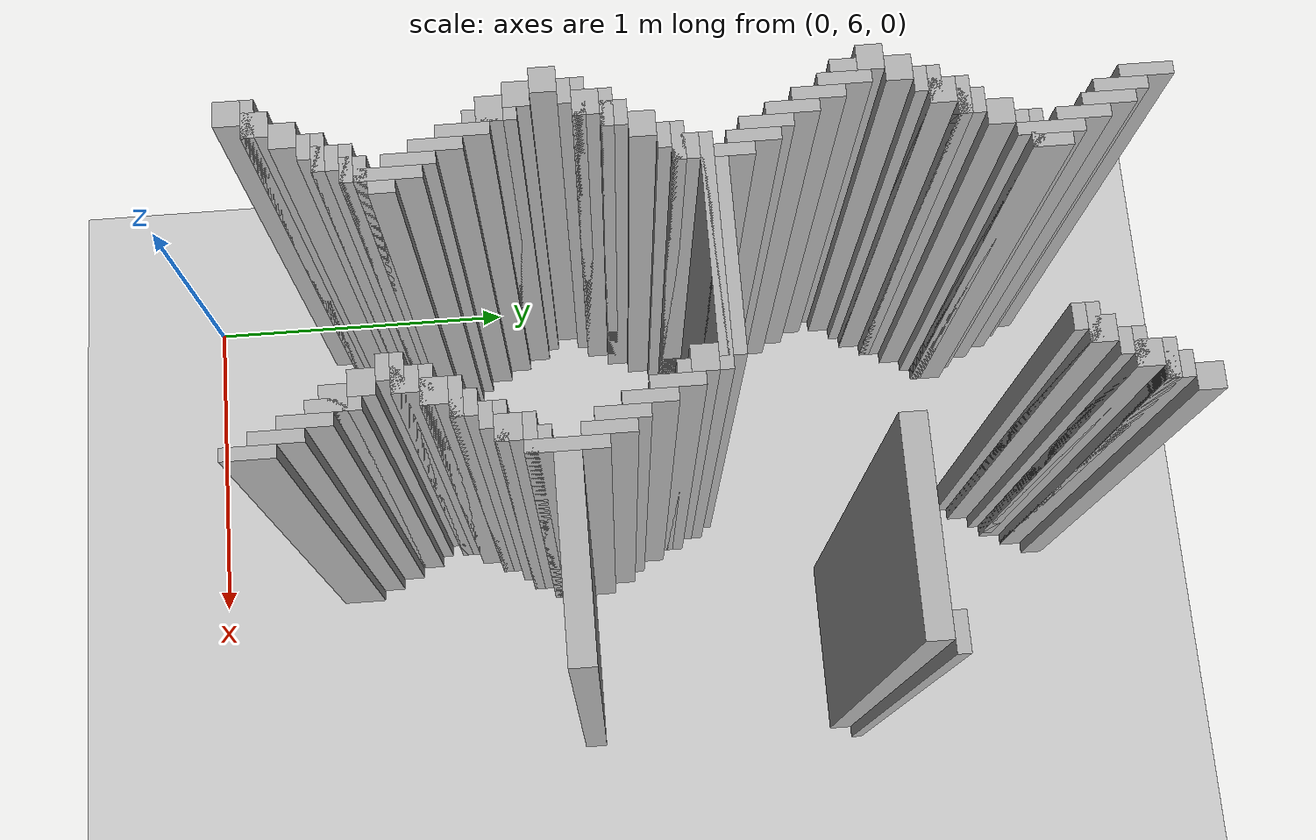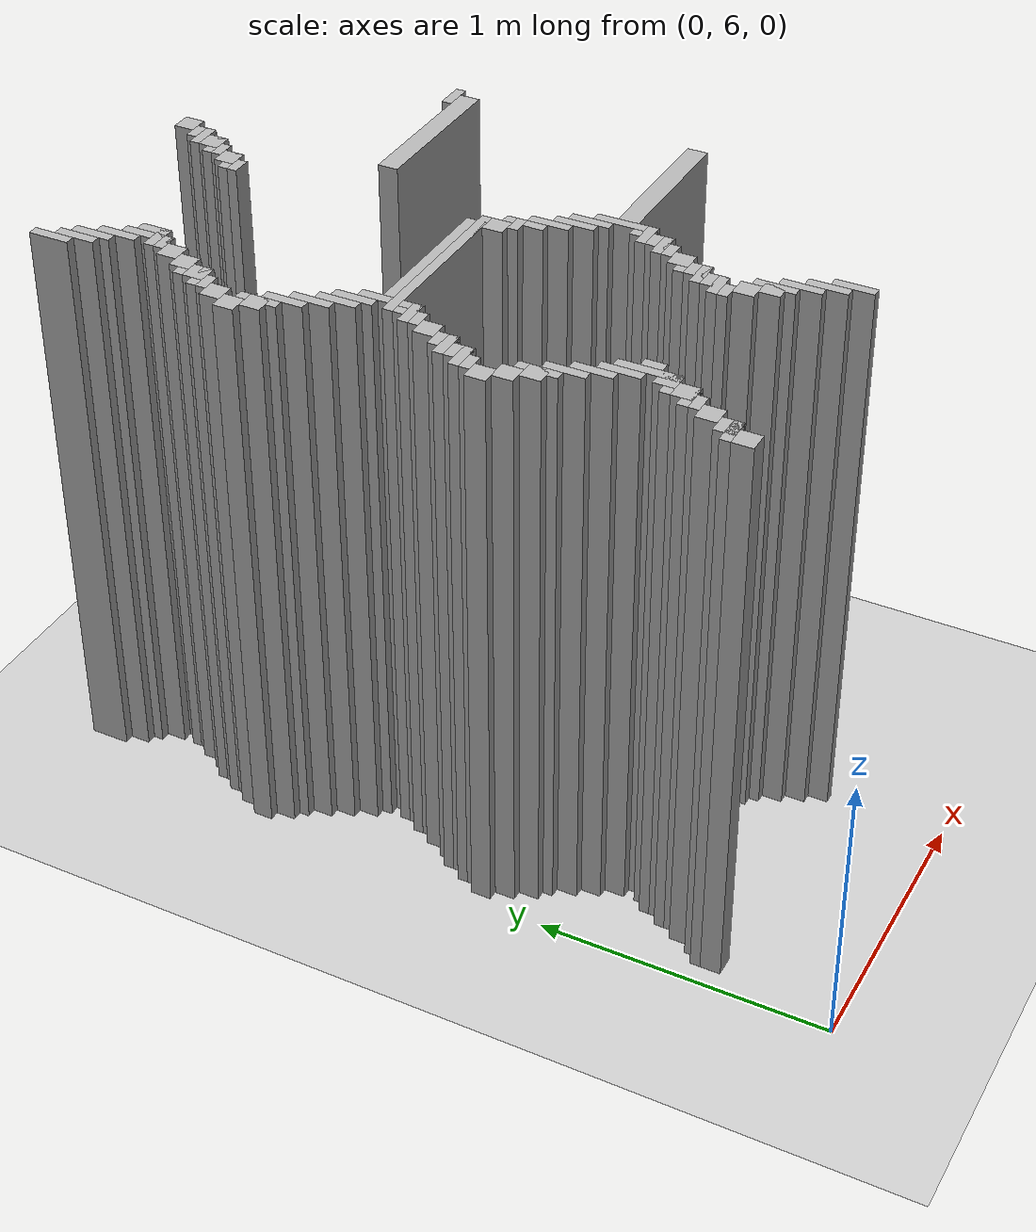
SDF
<sdf version="1.6">
 <world name="slam_world">
  <model name="ground_plane">
   <static>true</static>
   <link name="link">
    <collision name="collision">
     <geometry><plane><normal>0 0 1</normal><size>100 100</size></plane></geometry>
    </collision>
    <visual name="visual">
     <geometry><plane><normal>0 0 1</normal><size>100 100</size></plane></geometry>
     <material>
      <ambient>0.8 0.8 0.8 1</ambient>
      <diffuse>0.8 0.8 0.8 1</diffuse>
      <specular>0.8 0.8 0.8 1</specular>
     </material>
    </visual>
   </link>
  </model>
  <model name="wall_2858">
   <static>true</static>
   <pose>0.15661252900232017 8.77030162412993 1.0 0 0 0</pose>
   <link name="link">
    <collision name="collision">
     <geometry><box><size>0.03480278422273782 0.13921113689095127 2.0</size></box></geometry>
    </collision>
    <visual name="visual">
     <geometry><box><size>0.03480278422273782 0.13921113689095127 2.0</size></box></geometry>
     <material><ambient>0.5 0.5 0.5 1</ambient><diffuse>0.7 0.7 0.7 1</diffuse></material>
    </visual>
   </link>
  </model>
  <model name="wall_2859">
   <static>true</static>
   <pose>0.974477958236659 8.805104408352667 1.0 0 0 0</pose>
   <link name="link">
    <collision name="collision">
     <geometry><box><size>0.06960556844547564 0.06960556844547564 2.0</size></box></geometry>
    </collision>
    <visual name="visual">
     <geometry><box><size>0.06960556844547564 0.06960556844547564 2.0</size></box></geometry>
     <material><ambient>0.5 0.5 0.5 1</ambient><diffuse>0.7 0.7 0.7 1</diffuse></material>
    </visual>
   </link>
  </model>
  <model name="wall_2873">
   <static>true</static>
   <pose>0.191415313225058 8.700696055684455 1.0 0 0 0</pose>
   <link name="link">
    <collision name="collision">
     <geometry><box><size>0.03480278422273782 0.13921113689095127 2.0</size></box></geometry>
    </collision>
    <visual name="visual">
     <geometry><box><size>0.03480278422273782 0.13921113689095127 2.0</size></box></geometry>
     <material><ambient>0.5 0.5 0.5 1</ambient><diffuse>0.7 0.7 0.7 1</diffuse></material>
    </visual>
   </link>
  </model>
  <model name="wall_2874">
   <static>true</static>
   <pose>0.9396751740139211 8.735498839907192 1.0 0 0 0</pose>
   <link name="link">
    <collision name="collision">
     <geometry><box><size>0.06960556844547564 0.06960556844547564 2.0</size></box></geometry>
    </collision>
    <visual name="visual">
     <geometry><box><size>0.06960556844547564 0.06960556844547564 2.0</size></box></geometry>
     <material><ambient>0.5 0.5 0.5 1</ambient><diffuse>0.7 0.7 0.7 1</diffuse></material>
    </visual>
   </link>
  </model>
  <model name="wall_2888">
   <static>true</static>
   <pose>0.2262180974477958 8.665893271461716 1.0 0 0 0</pose>
   <link name="link">
    <collision name="collision">
     <geometry><box><size>0.03480278422273782 0.13921113689095127 2.0</size></box></geometry>
    </collision>
    <visual name="visual">
     <geometry><box><size>0.03480278422273782 0.13921113689095127 2.0</size></box></geometry>
     <material><ambient>0.5 0.5 0.5 1</ambient><diffuse>0.7 0.7 0.7 1</diffuse></material>
    </visual>
   </link>
  </model>
  <model name="wall_2889">
   <static>true</static>
   <pose>0.9222737819025522 8.718097447795824 1.0 0 0 0</pose>
   <link name="link">
    <collision name="collision">
     <geometry><box><size>0.10440835266821345 0.03480278422273782 2.0</size></box></geometry>
    </collision>
    <visual name="visual">
     <geometry><box><size>0.10440835266821345 0.03480278422273782 2.0</size></box></geometry>
     <material><ambient>0.5 0.5 0.5 1</ambient><diffuse>0.7 0.7 0.7 1</diffuse></material>
    </visual>
   </link>
  </model>
  <model name="wall_2903">
   <static>true</static>
   <pose>0.9048723897911832 8.665893271461716 1.0 0 0 0</pose>
   <link name="link">
    <collision name="collision">
     <geometry><box><size>0.06960556844547564 0.06960556844547564 2.0</size></box></geometry>
    </collision>
    <visual name="visual">
     <geometry><box><size>0.06960556844547564 0.06960556844547564 2.0</size></box></geometry>
     <material><ambient>0.5 0.5 0.5 1</ambient><diffuse>0.7 0.7 0.7 1</diffuse></material>
    </visual>
   </link>
  </model>
  <model name="wall_2914">
   <static>true</static>
   <pose>0.2610208816705336 8.596287703016241 1.0 0 0 0</pose>
   <link name="link">
    <collision name="collision">
     <geometry><box><size>0.03480278422273782 0.13921113689095127 2.0</size></box></geometry>
    </collision>
    <visual name="visual">
     <geometry><box><size>0.03480278422273782 0.13921113689095127 2.0</size></box></geometry>
     <material><ambient>0.5 0.5 0.5 1</ambient><diffuse>0.7 0.7 0.7 1</diffuse></material>
    </visual>
   </link>
  </model>
  <model name="wall_2915">
   <static>true</static>
   <pose>0.8874709976798143 8.648491879350347 1.0 0 0 0</pose>
   <link name="link">
    <collision name="collision">
     <geometry><box><size>0.10440835266821345 0.03480278422273782 2.0</size></box></geometry>
    </collision>
    <visual name="visual">
     <geometry><box><size>0.10440835266821345 0.03480278422273782 2.0</size></box></geometry>
     <material><ambient>0.5 0.5 0.5 1</ambient><diffuse>0.7 0.7 0.7 1</diffuse></material>
    </visual>
   </link>
  </model>
  <model name="wall_2929">
   <static>true</static>
   <pose>0.8700696055684455 8.61368909512761 1.0 0 0 0</pose>
   <link name="link">
    <collision name="collision">
     <geometry><box><size>0.06960556844547564 0.03480278422273782 2.0</size></box></geometry>
    </collision>
    <visual name="visual">
     <geometry><box><size>0.06960556844547564 0.03480278422273782 2.0</size></box></geometry>
     <material><ambient>0.5 0.5 0.5 1</ambient><diffuse>0.7 0.7 0.7 1</diffuse></material>
    </visual>
   </link>
  </model>
  <model name="wall_2935">
   <static>true</static>
   <pose>0.29582366589327147 8.509280742459396 1.0 0 0 0</pose>
   <link name="link">
    <collision name="collision">
     <geometry><box><size>0.03480278422273782 0.17401392111368907 2.0</size></box></geometry>
    </collision>
    <visual name="visual">
     <geometry><box><size>0.03480278422273782 0.17401392111368907 2.0</size></box></geometry>
     <material><ambient>0.5 0.5 0.5 1</ambient><diffuse>0.7 0.7 0.7 1</diffuse></material>
    </visual>
   </link>
  </model>
  <model name="wall_2936">
   <static>true</static>
   <pose>0.8352668213457076 8.561484918793504 1.0 0 0 0</pose>
   <link name="link">
    <collision name="collision">
     <geometry><box><size>0.06960556844547564 0.06960556844547564 2.0</size></box></geometry>
    </collision>
    <visual name="visual">
     <geometry><box><size>0.06960556844547564 0.06960556844547564 2.0</size></box></geometry>
     <material><ambient>0.5 0.5 0.5 1</ambient><diffuse>0.7 0.7 0.7 1</diffuse></material>
    </visual>
   </link>
  </model>
  <model name="wall_2950">
   <static>true</static>
   <pose>0.3306264501160093 8.509280742459396 1.0 0 0 0</pose>
   <link name="link">
    <collision name="collision">
     <geometry><box><size>0.03480278422273782 0.10440835266821345 2.0</size></box></geometry>
    </collision>
    <visual name="visual">
     <geometry><box><size>0.03480278422273782 0.10440835266821345 2.0</size></box></geometry>
     <material><ambient>0.5 0.5 0.5 1</ambient><diffuse>0.7 0.7 0.7 1</diffuse></material>
    </visual>
   </link>
  </model>
  <model name="wall_2951">
   <static>true</static>
   <pose>0.8178654292343387 8.544083526682135 1.0 0 0 0</pose>
   <link name="link">
    <collision name="collision">
     <geometry><box><size>0.10440835266821345 0.03480278422273782 2.0</size></box></geometry>
    </collision>
    <visual name="visual">
     <geometry><box><size>0.10440835266821345 0.03480278422273782 2.0</size></box></geometry>
     <material><ambient>0.5 0.5 0.5 1</ambient><diffuse>0.7 0.7 0.7 1</diffuse></material>
    </visual>
   </link>
  </model>
  <model name="wall_2965">
   <static>true</static>
   <pose>0.8004640371229698 8.509280742459396 1.0 0 0 0</pose>
   <link name="link">
    <collision name="collision">
     <geometry><box><size>0.06960556844547564 0.03480278422273782 2.0</size></box></geometry>
    </collision>
    <visual name="visual">
     <geometry><box><size>0.06960556844547564 0.03480278422273782 2.0</size></box></geometry>
     <material><ambient>0.5 0.5 0.5 1</ambient><diffuse>0.7 0.7 0.7 1</diffuse></material>
    </visual>
   </link>
  </model>
  <model name="wall_2975">
   <static>true</static>
   <pose>0.29582366589327147 8.474477958236658 1.0 0 0 0</pose>
   <link name="link">
    <collision name="collision">
     <geometry><box><size>0.10440835266821345 0.03480278422273782 2.0</size></box></geometry>
    </collision>
    <visual name="visual">
     <geometry><box><size>0.10440835266821345 0.03480278422273782 2.0</size></box></geometry>
     <material><ambient>0.5 0.5 0.5 1</ambient><diffuse>0.7 0.7 0.7 1</diffuse></material>
    </visual>
   </link>
  </model>
  <model name="wall_2986">
   <static>true</static>
   <pose>0.27842227378190254 8.43967517401392 1.0 0 0 0</pose>
   <link name="link">
    <collision name="collision">
     <geometry><box><size>0.06960556844547564 0.03480278422273782 2.0</size></box></geometry>
    </collision>
    <visual name="visual">
     <geometry><box><size>0.06960556844547564 0.03480278422273782 2.0</size></box></geometry>
     <material><ambient>0.5 0.5 0.5 1</ambient><diffuse>0.7 0.7 0.7 1</diffuse></material>
    </visual>
   </link>
  </model>
  <model name="wall_2999">
   <static>true</static>
   <pose>0.24361948955916474 8.387470997679815 1.0 0 0 0</pose>
   <link name="link">
    <collision name="collision">
     <geometry><box><size>0.06960556844547564 0.06960556844547564 2.0</size></box></geometry>
    </collision>
    <visual name="visual">
     <geometry><box><size>0.06960556844547564 0.06960556844547564 2.0</size></box></geometry>
     <material><ambient>0.5 0.5 0.5 1</ambient><diffuse>0.7 0.7 0.7 1</diffuse></material>
    </visual>
   </link>
  </model>
  <model name="wall_3012">
   <static>true</static>
   <pose>0.2088167053364269 8.317865429234338 1.0 0 0 0</pose>
   <link name="link">
    <collision name="collision">
     <geometry><box><size>0.06960556844547564 0.06960556844547564 2.0</size></box></geometry>
    </collision>
    <visual name="visual">
     <geometry><box><size>0.06960556844547564 0.06960556844547564 2.0</size></box></geometry>
     <material><ambient>0.5 0.5 0.5 1</ambient><diffuse>0.7 0.7 0.7 1</diffuse></material>
    </visual>
   </link>
  </model>
  <model name="wall_3025">
   <static>true</static>
   <pose>0.191415313225058 8.30046403712297 1.0 0 0 0</pose>
   <link name="link">
    <collision name="collision">
     <geometry><box><size>0.10440835266821345 0.03480278422273782 2.0</size></box></geometry>
    </collision>
    <visual name="visual">
     <geometry><box><size>0.10440835266821345 0.03480278422273782 2.0</size></box></geometry>
     <material><ambient>0.5 0.5 0.5 1</ambient><diffuse>0.7 0.7 0.7 1</diffuse></material>
    </visual>
   </link>
  </model>
  <model name="wall_3038">
   <static>true</static>
   <pose>0.17401392111368907 8.248259860788863 1.0 0 0 0</pose>
   <link name="link">
    <collision name="collision">
     <geometry><box><size>0.06960556844547564 0.06960556844547564 2.0</size></box></geometry>
    </collision>
    <visual name="visual">
     <geometry><box><size>0.06960556844547564 0.06960556844547564 2.0</size></box></geometry>
     <material><ambient>0.5 0.5 0.5 1</ambient><diffuse>0.7 0.7 0.7 1</diffuse></material>
    </visual>
   </link>
  </model>
  <model name="wall_3049">
   <static>true</static>
   <pose>0.15661252900232017 8.230858468677495 1.0 0 0 0</pose>
   <link name="link">
    <collision name="collision">
     <geometry><box><size>0.10440835266821345 0.03480278422273782 2.0</size></box></geometry>
    </collision>
    <visual name="visual">
     <geometry><box><size>0.10440835266821345 0.03480278422273782 2.0</size></box></geometry>
     <material><ambient>0.5 0.5 0.5 1</ambient><diffuse>0.7 0.7 0.7 1</diffuse></material>
    </visual>
   </link>
  </model>
  <model name="wall_3062">
   <static>true</static>
   <pose>0.13921113689095127 8.196055684454755 1.0 0 0 0</pose>
   <link name="link">
    <collision name="collision">
     <geometry><box><size>0.06960556844547564 0.03480278422273782 2.0</size></box></geometry>
    </collision>
    <visual name="visual">
     <geometry><box><size>0.06960556844547564 0.03480278422273782 2.0</size></box></geometry>
     <material><ambient>0.5 0.5 0.5 1</ambient><diffuse>0.7 0.7 0.7 1</diffuse></material>
    </visual>
   </link>
  </model>
  <model name="wall_3071">
   <static>true</static>
   <pose>0.10440835266821345 8.14385150812065 1.0 0 0 0</pose>
   <link name="link">
    <collision name="collision">
     <geometry><box><size>0.06960556844547564 0.06960556844547564 2.0</size></box></geometry>
    </collision>
    <visual name="visual">
     <geometry><box><size>0.06960556844547564 0.06960556844547564 2.0</size></box></geometry>
     <material><ambient>0.5 0.5 0.5 1</ambient><diffuse>0.7 0.7 0.7 1</diffuse></material>
    </visual>
   </link>
  </model>
  <model name="wall_3084">
   <static>true</static>
   <pose>1.548723897911833 8.12645011600928 1.0 0 0 0</pose>
   <link name="link">
    <collision name="collision">
     <geometry><box><size>0.10440835266821345 0.03480278422273782 2.0</size></box></geometry>
    </collision>
    <visual name="visual">
     <geometry><box><size>0.10440835266821345 0.03480278422273782 2.0</size></box></geometry>
     <material><ambient>0.5 0.5 0.5 1</ambient><diffuse>0.7 0.7 0.7 1</diffuse></material>
    </visual>
   </link>
  </model>
  <model name="wall_3096">
   <static>true</static>
   <pose>0.06960556844547564 8.074245939675174 1.0 0 0 0</pose>
   <link name="link">
    <collision name="collision">
     <geometry><box><size>0.06960556844547564 0.06960556844547564 2.0</size></box></geometry>
    </collision>
    <visual name="visual">
     <geometry><box><size>0.06960556844547564 0.06960556844547564 2.0</size></box></geometry>
     <material><ambient>0.5 0.5 0.5 1</ambient><diffuse>0.7 0.7 0.7 1</diffuse></material>
    </visual>
   </link>
  </model>
  <model name="wall_3097">
   <static>true</static>
   <pose>1.2877030162412992 8.074245939675174 1.0 0 0 0</pose>
   <link name="link">
    <collision name="collision">
     <geometry><box><size>0.5568445475638051 0.06960556844547564 2.0</size></box></geometry>
    </collision>
    <visual name="visual">
     <geometry><box><size>0.5568445475638051 0.06960556844547564 2.0</size></box></geometry>
     <material><ambient>0.5 0.5 0.5 1</ambient><diffuse>0.7 0.7 0.7 1</diffuse></material>
    </visual>
   </link>
  </model>
  <model name="wall_3107">
   <static>true</static>
   <pose>0.12180974477958237 8.004640371229698 1.0 0 0 0</pose>
   <link name="link">
    <collision name="collision">
     <geometry><box><size>0.03480278422273782 0.13921113689095127 2.0</size></box></geometry>
    </collision>
    <visual name="visual">
     <geometry><box><size>0.03480278422273782 0.13921113689095127 2.0</size></box></geometry>
     <material><ambient>0.5 0.5 0.5 1</ambient><diffuse>0.7 0.7 0.7 1</diffuse></material>
    </visual>
   </link>
  </model>
  <model name="wall_3114">
   <static>true</static>
   <pose>0.10440835266821345 8.004640371229698 1.0 0 0 0</pose>
   <link name="link">
    <collision name="collision">
     <geometry><box><size>0.06960556844547564 0.06960556844547564 2.0</size></box></geometry>
    </collision>
    <visual name="visual">
     <geometry><box><size>0.06960556844547564 0.06960556844547564 2.0</size></box></geometry>
     <material><ambient>0.5 0.5 0.5 1</ambient><diffuse>0.7 0.7 0.7 1</diffuse></material>
    </visual>
   </link>
  </model>
  <model name="wall_3123">
   <static>true</static>
   <pose>0.15661252900232017 7.935034802784222 1.0 0 0 0</pose>
   <link name="link">
    <collision name="collision">
     <geometry><box><size>0.03480278422273782 0.13921113689095127 2.0</size></box></geometry>
    </collision>
    <visual name="visual">
     <geometry><box><size>0.03480278422273782 0.13921113689095127 2.0</size></box></geometry>
     <material><ambient>0.5 0.5 0.5 1</ambient><diffuse>0.7 0.7 0.7 1</diffuse></material>
    </visual>
   </link>
  </model>
  <model name="wall_3137">
   <static>true</static>
   <pose>0.191415313225058 7.865429234338746 1.0 0 0 0</pose>
   <link name="link">
    <collision name="collision">
     <geometry><box><size>0.03480278422273782 0.13921113689095127 2.0</size></box></geometry>
    </collision>
    <visual name="visual">
     <geometry><box><size>0.03480278422273782 0.13921113689095127 2.0</size></box></geometry>
     <material><ambient>0.5 0.5 0.5 1</ambient><diffuse>0.7 0.7 0.7 1</diffuse></material>
    </visual>
   </link>
  </model>
  <model name="wall_3146">
   <static>true</static>
   <pose>0.2262180974477958 7.795823665893272 1.0 0 0 0</pose>
   <link name="link">
    <collision name="collision">
     <geometry><box><size>0.03480278422273782 0.13921113689095127 2.0</size></box></geometry>
    </collision>
    <visual name="visual">
     <geometry><box><size>0.03480278422273782 0.13921113689095127 2.0</size></box></geometry>
     <material><ambient>0.5 0.5 0.5 1</ambient><diffuse>0.7 0.7 0.7 1</diffuse></material>
    </visual>
   </link>
  </model>
  <model name="wall_3155">
   <static>true</static>
   <pose>0.2610208816705336 7.761020881670533 1.0 0 0 0</pose>
   <link name="link">
    <collision name="collision">
     <geometry><box><size>0.03480278422273782 0.13921113689095127 2.0</size></box></geometry>
    </collision>
    <visual name="visual">
     <geometry><box><size>0.03480278422273782 0.13921113689095127 2.0</size></box></geometry>
     <material><ambient>0.5 0.5 0.5 1</ambient><diffuse>0.7 0.7 0.7 1</diffuse></material>
    </visual>
   </link>
  </model>
  <model name="wall_3167">
   <static>true</static>
   <pose>0.29582366589327147 7.65661252900232 1.0 0 0 0</pose>
   <link name="link">
    <collision name="collision">
     <geometry><box><size>0.03480278422273782 0.2088167053364269 2.0</size></box></geometry>
    </collision>
    <visual name="visual">
     <geometry><box><size>0.03480278422273782 0.2088167053364269 2.0</size></box></geometry>
     <material><ambient>0.5 0.5 0.5 1</ambient><diffuse>0.7 0.7 0.7 1</diffuse></material>
    </visual>
   </link>
  </model>
  <model name="wall_3179">
   <static>true</static>
   <pose>0.574245939675174 7.65661252900232 1.0 0 0 0</pose>
   <link name="link">
    <collision name="collision">
     <geometry><box><size>0.5220417633410672 0.06960556844547564 2.0</size></box></geometry>
    </collision>
    <visual name="visual">
     <geometry><box><size>0.5220417633410672 0.06960556844547564 2.0</size></box></geometry>
     <material><ambient>0.5 0.5 0.5 1</ambient><diffuse>0.7 0.7 0.7 1</diffuse></material>
    </visual>
   </link>
  </model>
  <model name="wall_3193">
   <static>true</static>
   <pose>0.5568445475638051 7.6392111368909505 1.0 0 0 0</pose>
   <link name="link">
    <collision name="collision">
     <geometry><box><size>0.6264501160092807 0.03480278422273782 2.0</size></box></geometry>
    </collision>
    <visual name="visual">
     <geometry><box><size>0.6264501160092807 0.03480278422273782 2.0</size></box></geometry>
     <material><ambient>0.5 0.5 0.5 1</ambient><diffuse>0.7 0.7 0.7 1</diffuse></material>
    </visual>
   </link>
  </model>
  <model name="wall_3204">
   <static>true</static>
   <pose>0.27842227378190254 7.587006960556844 1.0 0 0 0</pose>
   <link name="link">
    <collision name="collision">
     <geometry><box><size>0.06960556844547564 0.06960556844547564 2.0</size></box></geometry>
    </collision>
    <visual name="visual">
     <geometry><box><size>0.06960556844547564 0.06960556844547564 2.0</size></box></geometry>
     <material><ambient>0.5 0.5 0.5 1</ambient><diffuse>0.7 0.7 0.7 1</diffuse></material>
    </visual>
   </link>
  </model>
  <model name="wall_3205">
   <static>true</static>
   <pose>0.8352668213457076 7.587006960556844 1.0 0 0 0</pose>
   <link name="link">
    <collision name="collision">
     <geometry><box><size>0.06960556844547564 0.06960556844547564 2.0</size></box></geometry>
    </collision>
    <visual name="visual">
     <geometry><box><size>0.06960556844547564 0.06960556844547564 2.0</size></box></geometry>
     <material><ambient>0.5 0.5 0.5 1</ambient><diffuse>0.7 0.7 0.7 1</diffuse></material>
    </visual>
   </link>
  </model>
  <model name="wall_3217">
   <static>true</static>
   <pose>0.2610208816705336 7.569605568445476 1.0 0 0 0</pose>
   <link name="link">
    <collision name="collision">
     <geometry><box><size>0.10440835266821345 0.03480278422273782 2.0</size></box></geometry>
    </collision>
    <visual name="visual">
     <geometry><box><size>0.10440835266821345 0.03480278422273782 2.0</size></box></geometry>
     <material><ambient>0.5 0.5 0.5 1</ambient><diffuse>0.7 0.7 0.7 1</diffuse></material>
    </visual>
   </link>
  </model>
  <model name="wall_3218">
   <static>true</static>
   <pose>0.8874709976798143 7.517401392111369 1.0 0 0 0</pose>
   <link name="link">
    <collision name="collision">
     <geometry><box><size>0.03480278422273782 0.13921113689095127 2.0</size></box></geometry>
    </collision>
    <visual name="visual">
     <geometry><box><size>0.03480278422273782 0.13921113689095127 2.0</size></box></geometry>
     <material><ambient>0.5 0.5 0.5 1</ambient><diffuse>0.7 0.7 0.7 1</diffuse></material>
    </visual>
   </link>
  </model>
  <model name="wall_3230">
   <static>true</static>
   <pose>0.24361948955916474 7.534802784222737 1.0 0 0 0</pose>
   <link name="link">
    <collision name="collision">
     <geometry><box><size>0.06960556844547564 0.03480278422273782 2.0</size></box></geometry>
    </collision>
    <visual name="visual">
     <geometry><box><size>0.06960556844547564 0.03480278422273782 2.0</size></box></geometry>
     <material><ambient>0.5 0.5 0.5 1</ambient><diffuse>0.7 0.7 0.7 1</diffuse></material>
    </visual>
   </link>
  </model>
  <model name="wall_3231">
   <static>true</static>
   <pose>0.8700696055684455 7.534802784222737 1.0 0 0 0</pose>
   <link name="link">
    <collision name="collision">
     <geometry><box><size>0.06960556844547564 0.03480278422273782 2.0</size></box></geometry>
    </collision>
    <visual name="visual">
     <geometry><box><size>0.06960556844547564 0.03480278422273782 2.0</size></box></geometry>
     <material><ambient>0.5 0.5 0.5 1</ambient><diffuse>0.7 0.7 0.7 1</diffuse></material>
    </visual>
   </link>
  </model>
  <model name="wall_3239">
   <static>true</static>
   <pose>0.2088167053364269 7.48259860788863 1.0 0 0 0</pose>
   <link name="link">
    <collision name="collision">
     <geometry><box><size>0.06960556844547564 0.06960556844547564 2.0</size></box></geometry>
    </collision>
    <visual name="visual">
     <geometry><box><size>0.06960556844547564 0.06960556844547564 2.0</size></box></geometry>
     <material><ambient>0.5 0.5 0.5 1</ambient><diffuse>0.7 0.7 0.7 1</diffuse></material>
    </visual>
   </link>
  </model>
  <model name="wall_3240">
   <static>true</static>
   <pose>0.9222737819025522 7.447795823665893 1.0 0 0 0</pose>
   <link name="link">
    <collision name="collision">
     <geometry><box><size>0.03480278422273782 0.13921113689095127 2.0</size></box></geometry>
    </collision>
    <visual name="visual">
     <geometry><box><size>0.03480278422273782 0.13921113689095127 2.0</size></box></geometry>
     <material><ambient>0.5 0.5 0.5 1</ambient><diffuse>0.7 0.7 0.7 1</diffuse></material>
    </visual>
   </link>
  </model>
  <model name="wall_3252">
   <static>true</static>
   <pose>0.17401392111368907 7.412993039443156 1.0 0 0 0</pose>
   <link name="link">
    <collision name="collision">
     <geometry><box><size>0.06960556844547564 0.06960556844547564 2.0</size></box></geometry>
    </collision>
    <visual name="visual">
     <geometry><box><size>0.06960556844547564 0.06960556844547564 2.0</size></box></geometry>
     <material><ambient>0.5 0.5 0.5 1</ambient><diffuse>0.7 0.7 0.7 1</diffuse></material>
    </visual>
   </link>
  </model>
  <model name="wall_3253">
   <static>true</static>
   <pose>0.95707656612529 7.378190255220417 1.0 0 0 0</pose>
   <link name="link">
    <collision name="collision">
     <geometry><box><size>0.03480278422273782 0.13921113689095127 2.0</size></box></geometry>
    </collision>
    <visual name="visual">
     <geometry><box><size>0.03480278422273782 0.13921113689095127 2.0</size></box></geometry>
     <material><ambient>0.5 0.5 0.5 1</ambient><diffuse>0.7 0.7 0.7 1</diffuse></material>
    </visual>
   </link>
  </model>
  <model name="wall_3265">
   <static>true</static>
   <pose>0.15661252900232017 7.395591647331786 1.0 0 0 0</pose>
   <link name="link">
    <collision name="collision">
     <geometry><box><size>0.10440835266821345 0.03480278422273782 2.0</size></box></geometry>
    </collision>
    <visual name="visual">
     <geometry><box><size>0.10440835266821345 0.03480278422273782 2.0</size></box></geometry>
     <material><ambient>0.5 0.5 0.5 1</ambient><diffuse>0.7 0.7 0.7 1</diffuse></material>
    </visual>
   </link>
  </model>
  <model name="wall_3266">
   <static>true</static>
   <pose>0.9918793503480278 7.34338747099768 1.0 0 0 0</pose>
   <link name="link">
    <collision name="collision">
     <geometry><box><size>0.03480278422273782 0.13921113689095127 2.0</size></box></geometry>
    </collision>
    <visual name="visual">
     <geometry><box><size>0.03480278422273782 0.13921113689095127 2.0</size></box></geometry>
     <material><ambient>0.5 0.5 0.5 1</ambient><diffuse>0.7 0.7 0.7 1</diffuse></material>
    </visual>
   </link>
  </model>
  <model name="wall_3278">
   <static>true</static>
   <pose>0.13921113689095127 7.34338747099768 1.0 0 0 0</pose>
   <link name="link">
    <collision name="collision">
     <geometry><box><size>0.06960556844547564 0.06960556844547564 2.0</size></box></geometry>
    </collision>
    <visual name="visual">
     <geometry><box><size>0.06960556844547564 0.06960556844547564 2.0</size></box></geometry>
     <material><ambient>0.5 0.5 0.5 1</ambient><diffuse>0.7 0.7 0.7 1</diffuse></material>
    </visual>
   </link>
  </model>
  <model name="wall_3285">
   <static>true</static>
   <pose>0.12180974477958237 7.32598607888631 1.0 0 0 0</pose>
   <link name="link">
    <collision name="collision">
     <geometry><box><size>0.10440835266821345 0.03480278422273782 2.0</size></box></geometry>
    </collision>
    <visual name="visual">
     <geometry><box><size>0.10440835266821345 0.03480278422273782 2.0</size></box></geometry>
     <material><ambient>0.5 0.5 0.5 1</ambient><diffuse>0.7 0.7 0.7 1</diffuse></material>
    </visual>
   </link>
  </model>
  <model name="wall_3286">
   <static>true</static>
   <pose>1.0266821345707655 7.238979118329466 1.0 0 0 0</pose>
   <link name="link">
    <collision name="collision">
     <geometry><box><size>0.03480278422273782 0.2088167053364269 2.0</size></box></geometry>
    </collision>
    <visual name="visual">
     <geometry><box><size>0.03480278422273782 0.2088167053364269 2.0</size></box></geometry>
     <material><ambient>0.5 0.5 0.5 1</ambient><diffuse>0.7 0.7 0.7 1</diffuse></material>
    </visual>
   </link>
  </model>
  <model name="wall_3298">
   <static>true</static>
   <pose>0.10440835266821345 7.291183294663573 1.0 0 0 0</pose>
   <link name="link">
    <collision name="collision">
     <geometry><box><size>0.06960556844547564 0.03480278422273782 2.0</size></box></geometry>
    </collision>
    <visual name="visual">
     <geometry><box><size>0.06960556844547564 0.03480278422273782 2.0</size></box></geometry>
     <material><ambient>0.5 0.5 0.5 1</ambient><diffuse>0.7 0.7 0.7 1</diffuse></material>
    </visual>
   </link>
  </model>
  <model name="wall_3305">
   <static>true</static>
   <pose>0.06960556844547564 7.238979118329466 1.0 0 0 0</pose>
   <link name="link">
    <collision name="collision">
     <geometry><box><size>0.06960556844547564 0.06960556844547564 2.0</size></box></geometry>
    </collision>
    <visual name="visual">
     <geometry><box><size>0.06960556844547564 0.06960556844547564 2.0</size></box></geometry>
     <material><ambient>0.5 0.5 0.5 1</ambient><diffuse>0.7 0.7 0.7 1</diffuse></material>
    </visual>
   </link>
  </model>
  <model name="wall_3306">
   <static>true</static>
   <pose>1.3051044083526682 7.238979118329466 1.0 0 0 0</pose>
   <link name="link">
    <collision name="collision">
     <geometry><box><size>0.5220417633410672 0.06960556844547564 2.0</size></box></geometry>
    </collision>
    <visual name="visual">
     <geometry><box><size>0.5220417633410672 0.06960556844547564 2.0</size></box></geometry>
     <material><ambient>0.5 0.5 0.5 1</ambient><diffuse>0.7 0.7 0.7 1</diffuse></material>
    </visual>
   </link>
  </model>
  <model name="wall_3318">
   <static>true</static>
   <pose>0.10440835266821345 7.16937354988399 1.0 0 0 0</pose>
   <link name="link">
    <collision name="collision">
     <geometry><box><size>0.06960556844547564 0.06960556844547564 2.0</size></box></geometry>
    </collision>
    <visual name="visual">
     <geometry><box><size>0.06960556844547564 0.06960556844547564 2.0</size></box></geometry>
     <material><ambient>0.5 0.5 0.5 1</ambient><diffuse>0.7 0.7 0.7 1</diffuse></material>
    </visual>
   </link>
  </model>
  <model name="wall_3319">
   <static>true</static>
   <pose>1.0092807424593968 7.16937354988399 1.0 0 0 0</pose>
   <link name="link">
    <collision name="collision">
     <geometry><box><size>0.06960556844547564 0.06960556844547564 2.0</size></box></geometry>
    </collision>
    <visual name="visual">
     <geometry><box><size>0.06960556844547564 0.06960556844547564 2.0</size></box></geometry>
     <material><ambient>0.5 0.5 0.5 1</ambient><diffuse>0.7 0.7 0.7 1</diffuse></material>
    </visual>
   </link>
  </model>
  <model name="wall_3330">
   <static>true</static>
   <pose>0.15661252900232017 7.099767981438514 1.0 0 0 0</pose>
   <link name="link">
    <collision name="collision">
     <geometry><box><size>0.03480278422273782 0.13921113689095127 2.0</size></box></geometry>
    </collision>
    <visual name="visual">
     <geometry><box><size>0.03480278422273782 0.13921113689095127 2.0</size></box></geometry>
     <material><ambient>0.5 0.5 0.5 1</ambient><diffuse>0.7 0.7 0.7 1</diffuse></material>
    </visual>
   </link>
  </model>
  <model name="wall_3331">
   <static>true</static>
   <pose>0.9918793503480278 7.151972157772621 1.0 0 0 0</pose>
   <link name="link">
    <collision name="collision">
     <geometry><box><size>0.10440835266821345 0.03480278422273782 2.0</size></box></geometry>
    </collision>
    <visual name="visual">
     <geometry><box><size>0.10440835266821345 0.03480278422273782 2.0</size></box></geometry>
     <material><ambient>0.5 0.5 0.5 1</ambient><diffuse>0.7 0.7 0.7 1</diffuse></material>
    </visual>
   </link>
  </model>
  <model name="wall_3342">
   <static>true</static>
   <pose>0.13921113689095127 7.099767981438514 1.0 0 0 0</pose>
   <link name="link">
    <collision name="collision">
     <geometry><box><size>0.06960556844547564 0.06960556844547564 2.0</size></box></geometry>
    </collision>
    <visual name="visual">
     <geometry><box><size>0.06960556844547564 0.06960556844547564 2.0</size></box></geometry>
     <material><ambient>0.5 0.5 0.5 1</ambient><diffuse>0.7 0.7 0.7 1</diffuse></material>
    </visual>
   </link>
  </model>
  <model name="wall_3343">
   <static>true</static>
   <pose>0.974477958236659 7.099767981438514 1.0 0 0 0</pose>
   <link name="link">
    <collision name="collision">
     <geometry><box><size>0.06960556844547564 0.06960556844547564 2.0</size></box></geometry>
    </collision>
    <visual name="visual">
     <geometry><box><size>0.06960556844547564 0.06960556844547564 2.0</size></box></geometry>
     <material><ambient>0.5 0.5 0.5 1</ambient><diffuse>0.7 0.7 0.7 1</diffuse></material>
    </visual>
   </link>
  </model>
  <model name="wall_3354">
   <static>true</static>
   <pose>0.191415313225058 7.03016241299304 1.0 0 0 0</pose>
   <link name="link">
    <collision name="collision">
     <geometry><box><size>0.03480278422273782 0.13921113689095127 2.0</size></box></geometry>
    </collision>
    <visual name="visual">
     <geometry><box><size>0.03480278422273782 0.13921113689095127 2.0</size></box></geometry>
     <material><ambient>0.5 0.5 0.5 1</ambient><diffuse>0.7 0.7 0.7 1</diffuse></material>
    </visual>
   </link>
  </model>
  <model name="wall_3355">
   <static>true</static>
   <pose>0.95707656612529 7.082366589327146 1.0 0 0 0</pose>
   <link name="link">
    <collision name="collision">
     <geometry><box><size>0.10440835266821345 0.03480278422273782 2.0</size></box></geometry>
    </collision>
    <visual name="visual">
     <geometry><box><size>0.10440835266821345 0.03480278422273782 2.0</size></box></geometry>
     <material><ambient>0.5 0.5 0.5 1</ambient><diffuse>0.7 0.7 0.7 1</diffuse></material>
    </visual>
   </link>
  </model>
  <model name="wall_3366">
   <static>true</static>
   <pose>0.9396751740139211 7.047563805104408 1.0 0 0 0</pose>
   <link name="link">
    <collision name="collision">
     <geometry><box><size>0.06960556844547564 0.03480278422273782 2.0</size></box></geometry>
    </collision>
    <visual name="visual">
     <geometry><box><size>0.06960556844547564 0.03480278422273782 2.0</size></box></geometry>
     <material><ambient>0.5 0.5 0.5 1</ambient><diffuse>0.7 0.7 0.7 1</diffuse></material>
    </visual>
   </link>
  </model>
  <model name="wall_3371">
   <static>true</static>
   <pose>0.2262180974477958 6.960556844547564 1.0 0 0 0</pose>
   <link name="link">
    <collision name="collision">
     <geometry><box><size>0.03480278422273782 0.13921113689095127 2.0</size></box></geometry>
    </collision>
    <visual name="visual">
     <geometry><box><size>0.03480278422273782 0.13921113689095127 2.0</size></box></geometry>
     <material><ambient>0.5 0.5 0.5 1</ambient><diffuse>0.7 0.7 0.7 1</diffuse></material>
    </visual>
   </link>
  </model>
  <model name="wall_3372">
   <static>true</static>
   <pose>0.9048723897911832 6.995359628770301 1.0 0 0 0</pose>
   <link name="link">
    <collision name="collision">
     <geometry><box><size>0.06960556844547564 0.06960556844547564 2.0</size></box></geometry>
    </collision>
    <visual name="visual">
     <geometry><box><size>0.06960556844547564 0.06960556844547564 2.0</size></box></geometry>
     <material><ambient>0.5 0.5 0.5 1</ambient><diffuse>0.7 0.7 0.7 1</diffuse></material>
    </visual>
   </link>
  </model>
  <model name="wall_3383">
   <static>true</static>
   <pose>0.8874709976798143 6.977958236658933 1.0 0 0 0</pose>
   <link name="link">
    <collision name="collision">
     <geometry><box><size>0.10440835266821345 0.03480278422273782 2.0</size></box></geometry>
    </collision>
    <visual name="visual">
     <geometry><box><size>0.10440835266821345 0.03480278422273782 2.0</size></box></geometry>
     <material><ambient>0.5 0.5 0.5 1</ambient><diffuse>0.7 0.7 0.7 1</diffuse></material>
    </visual>
   </link>
  </model>
  <model name="wall_3388">
   <static>true</static>
   <pose>0.2610208816705336 6.890951276102088 1.0 0 0 0</pose>
   <link name="link">
    <collision name="collision">
     <geometry><box><size>0.03480278422273782 0.13921113689095127 2.0</size></box></geometry>
    </collision>
    <visual name="visual">
     <geometry><box><size>0.03480278422273782 0.13921113689095127 2.0</size></box></geometry>
     <material><ambient>0.5 0.5 0.5 1</ambient><diffuse>0.7 0.7 0.7 1</diffuse></material>
    </visual>
   </link>
  </model>
  <model name="wall_3389">
   <static>true</static>
   <pose>0.8700696055684455 6.9257540603248255 1.0 0 0 0</pose>
   <link name="link">
    <collision name="collision">
     <geometry><box><size>0.06960556844547564 0.06960556844547564 2.0</size></box></geometry>
    </collision>
    <visual name="visual">
     <geometry><box><size>0.06960556844547564 0.06960556844547564 2.0</size></box></geometry>
     <material><ambient>0.5 0.5 0.5 1</ambient><diffuse>0.7 0.7 0.7 1</diffuse></material>
    </visual>
   </link>
  </model>
  <model name="wall_3400">
   <static>true</static>
   <pose>0.29582366589327147 6.821345707656612 1.0 0 0 0</pose>
   <link name="link">
    <collision name="collision">
     <geometry><box><size>0.03480278422273782 0.2088167053364269 2.0</size></box></geometry>
    </collision>
    <visual name="visual">
     <geometry><box><size>0.03480278422273782 0.2088167053364269 2.0</size></box></geometry>
     <material><ambient>0.5 0.5 0.5 1</ambient><diffuse>0.7 0.7 0.7 1</diffuse></material>
    </visual>
   </link>
  </model>
  <model name="wall_3401">
   <static>true</static>
   <pose>0.8526682134570766 6.908352668213457 1.0 0 0 0</pose>
   <link name="link">
    <collision name="collision">
     <geometry><box><size>0.10440835266821345 0.03480278422273782 2.0</size></box></geometry>
    </collision>
    <visual name="visual">
     <geometry><box><size>0.10440835266821345 0.03480278422273782 2.0</size></box></geometry>
     <material><ambient>0.5 0.5 0.5 1</ambient><diffuse>0.7 0.7 0.7 1</diffuse></material>
    </visual>
   </link>
  </model>
  <model name="wall_3412">
   <static>true</static>
   <pose>0.8352668213457076 6.85614849187935 1.0 0 0 0</pose>
   <link name="link">
    <collision name="collision">
     <geometry><box><size>0.06960556844547564 0.06960556844547564 2.0</size></box></geometry>
    </collision>
    <visual name="visual">
     <geometry><box><size>0.06960556844547564 0.06960556844547564 2.0</size></box></geometry>
     <material><ambient>0.5 0.5 0.5 1</ambient><diffuse>0.7 0.7 0.7 1</diffuse></material>
    </visual>
   </link>
  </model>
  <model name="wall_3417">
   <static>true</static>
   <pose>0.3306264501160093 6.821345707656612 1.0 0 0 0</pose>
   <link name="link">
    <collision name="collision">
     <geometry><box><size>0.03480278422273782 0.06960556844547564 2.0</size></box></geometry>
    </collision>
    <visual name="visual">
     <geometry><box><size>0.03480278422273782 0.06960556844547564 2.0</size></box></geometry>
     <material><ambient>0.5 0.5 0.5 1</ambient><diffuse>0.7 0.7 0.7 1</diffuse></material>
    </visual>
   </link>
  </model>
  <model name="wall_3418">
   <static>true</static>
   <pose>0.8178654292343387 6.838747099767981 1.0 0 0 0</pose>
   <link name="link">
    <collision name="collision">
     <geometry><box><size>0.10440835266821345 0.03480278422273782 2.0</size></box></geometry>
    </collision>
    <visual name="visual">
     <geometry><box><size>0.10440835266821345 0.03480278422273782 2.0</size></box></geometry>
     <material><ambient>0.5 0.5 0.5 1</ambient><diffuse>0.7 0.7 0.7 1</diffuse></material>
    </visual>
   </link>
  </model>
  <model name="wall_3431">
   <static>true</static>
   <pose>0.8004640371229698 6.803944315545244 1.0 0 0 0</pose>
   <link name="link">
    <collision name="collision">
     <geometry><box><size>0.06960556844547564 0.03480278422273782 2.0</size></box></geometry>
    </collision>
    <visual name="visual">
     <geometry><box><size>0.06960556844547564 0.03480278422273782 2.0</size></box></geometry>
     <material><ambient>0.5 0.5 0.5 1</ambient><diffuse>0.7 0.7 0.7 1</diffuse></material>
    </visual>
   </link>
  </model>
  <model name="wall_3436">
   <static>true</static>
   <pose>0.27842227378190254 6.751740139211137 1.0 0 0 0</pose>
   <link name="link">
    <collision name="collision">
     <geometry><box><size>0.06960556844547564 0.06960556844547564 2.0</size></box></geometry>
    </collision>
    <visual name="visual">
     <geometry><box><size>0.06960556844547564 0.06960556844547564 2.0</size></box></geometry>
     <material><ambient>0.5 0.5 0.5 1</ambient><diffuse>0.7 0.7 0.7 1</diffuse></material>
    </visual>
   </link>
  </model>
  <model name="wall_3437">
   <static>true</static>
   <pose>0.8352668213457076 6.751740139211137 1.0 0 0 0</pose>
   <link name="link">
    <collision name="collision">
     <geometry><box><size>0.06960556844547564 0.06960556844547564 2.0</size></box></geometry>
    </collision>
    <visual name="visual">
     <geometry><box><size>0.06960556844547564 0.06960556844547564 2.0</size></box></geometry>
     <material><ambient>0.5 0.5 0.5 1</ambient><diffuse>0.7 0.7 0.7 1</diffuse></material>
    </visual>
   </link>
  </model>
  <model name="wall_3456">
   <static>true</static>
   <pose>0.2610208816705336 6.734338747099768 1.0 0 0 0</pose>
   <link name="link">
    <collision name="collision">
     <geometry><box><size>0.10440835266821345 0.03480278422273782 2.0</size></box></geometry>
    </collision>
    <visual name="visual">
     <geometry><box><size>0.10440835266821345 0.03480278422273782 2.0</size></box></geometry>
     <material><ambient>0.5 0.5 0.5 1</ambient><diffuse>0.7 0.7 0.7 1</diffuse></material>
    </visual>
   </link>
  </model>
  <model name="wall_3457">
   <static>true</static>
   <pose>0.8874709976798143 6.682134570765661 1.0 0 0 0</pose>
   <link name="link">
    <collision name="collision">
     <geometry><box><size>0.03480278422273782 0.13921113689095127 2.0</size></box></geometry>
    </collision>
    <visual name="visual">
     <geometry><box><size>0.03480278422273782 0.13921113689095127 2.0</size></box></geometry>
     <material><ambient>0.5 0.5 0.5 1</ambient><diffuse>0.7 0.7 0.7 1</diffuse></material>
    </visual>
   </link>
  </model>
  <model name="wall_3476">
   <static>true</static>
   <pose>0.24361948955916474 6.682134570765661 1.0 0 0 0</pose>
   <link name="link">
    <collision name="collision">
     <geometry><box><size>0.06960556844547564 0.06960556844547564 2.0</size></box></geometry>
    </collision>
    <visual name="visual">
     <geometry><box><size>0.06960556844547564 0.06960556844547564 2.0</size></box></geometry>
     <material><ambient>0.5 0.5 0.5 1</ambient><diffuse>0.7 0.7 0.7 1</diffuse></material>
    </visual>
   </link>
  </model>
  <model name="wall_3477">
   <static>true</static>
   <pose>0.8700696055684455 6.682134570765661 1.0 0 0 0</pose>
   <link name="link">
    <collision name="collision">
     <geometry><box><size>0.06960556844547564 0.06960556844547564 2.0</size></box></geometry>
    </collision>
    <visual name="visual">
     <geometry><box><size>0.06960556844547564 0.06960556844547564 2.0</size></box></geometry>
     <material><ambient>0.5 0.5 0.5 1</ambient><diffuse>0.7 0.7 0.7 1</diffuse></material>
    </visual>
   </link>
  </model>
  <model name="wall_3496">
   <static>true</static>
   <pose>0.2262180974477958 6.664733178654292 1.0 0 0 0</pose>
   <link name="link">
    <collision name="collision">
     <geometry><box><size>0.10440835266821345 0.03480278422273782 2.0</size></box></geometry>
    </collision>
    <visual name="visual">
     <geometry><box><size>0.10440835266821345 0.03480278422273782 2.0</size></box></geometry>
     <material><ambient>0.5 0.5 0.5 1</ambient><diffuse>0.7 0.7 0.7 1</diffuse></material>
    </visual>
   </link>
  </model>
  <model name="wall_3497">
   <static>true</static>
   <pose>0.9222737819025522 6.612529002320185 1.0 0 0 0</pose>
   <link name="link">
    <collision name="collision">
     <geometry><box><size>0.03480278422273782 0.13921113689095127 2.0</size></box></geometry>
    </collision>
    <visual name="visual">
     <geometry><box><size>0.03480278422273782 0.13921113689095127 2.0</size></box></geometry>
     <material><ambient>0.5 0.5 0.5 1</ambient><diffuse>0.7 0.7 0.7 1</diffuse></material>
    </visual>
   </link>
  </model>
  <model name="wall_3516">
   <static>true</static>
   <pose>0.2088167053364269 6.629930394431554 1.0 0 0 0</pose>
   <link name="link">
    <collision name="collision">
     <geometry><box><size>0.06960556844547564 0.03480278422273782 2.0</size></box></geometry>
    </collision>
    <visual name="visual">
     <geometry><box><size>0.06960556844547564 0.03480278422273782 2.0</size></box></geometry>
     <material><ambient>0.5 0.5 0.5 1</ambient><diffuse>0.7 0.7 0.7 1</diffuse></material>
    </visual>
   </link>
  </model>
  <model name="wall_3526">
   <static>true</static>
   <pose>0.17401392111368907 6.577726218097448 1.0 0 0 0</pose>
   <link name="link">
    <collision name="collision">
     <geometry><box><size>0.06960556844547564 0.06960556844547564 2.0</size></box></geometry>
    </collision>
    <visual name="visual">
     <geometry><box><size>0.06960556844547564 0.06960556844547564 2.0</size></box></geometry>
     <material><ambient>0.5 0.5 0.5 1</ambient><diffuse>0.7 0.7 0.7 1</diffuse></material>
    </visual>
   </link>
  </model>
  <model name="wall_3527">
   <static>true</static>
   <pose>0.95707656612529 6.5429234338747095 1.0 0 0 0</pose>
   <link name="link">
    <collision name="collision">
     <geometry><box><size>0.03480278422273782 0.13921113689095127 2.0</size></box></geometry>
    </collision>
    <visual name="visual">
     <geometry><box><size>0.03480278422273782 0.13921113689095127 2.0</size></box></geometry>
     <material><ambient>0.5 0.5 0.5 1</ambient><diffuse>0.7 0.7 0.7 1</diffuse></material>
    </visual>
   </link>
  </model>
  <model name="wall_3546">
   <static>true</static>
   <pose>0.13921113689095127 6.508120649651972 1.0 0 0 0</pose>
   <link name="link">
    <collision name="collision">
     <geometry><box><size>0.06960556844547564 0.06960556844547564 2.0</size></box></geometry>
    </collision>
    <visual name="visual">
     <geometry><box><size>0.06960556844547564 0.06960556844547564 2.0</size></box></geometry>
     <material><ambient>0.5 0.5 0.5 1</ambient><diffuse>0.7 0.7 0.7 1</diffuse></material>
    </visual>
   </link>
  </model>
  <model name="wall_3547">
   <static>true</static>
   <pose>0.9918793503480278 6.473317865429234 1.0 0 0 0</pose>
   <link name="link">
    <collision name="collision">
     <geometry><box><size>0.03480278422273782 0.13921113689095127 2.0</size></box></geometry>
    </collision>
    <visual name="visual">
     <geometry><box><size>0.03480278422273782 0.13921113689095127 2.0</size></box></geometry>
     <material><ambient>0.5 0.5 0.5 1</ambient><diffuse>0.7 0.7 0.7 1</diffuse></material>
    </visual>
   </link>
  </model>
  <model name="wall_3566">
   <static>true</static>
   <pose>0.12180974477958237 6.490719257540603 1.0 0 0 0</pose>
   <link name="link">
    <collision name="collision">
     <geometry><box><size>0.10440835266821345 0.03480278422273782 2.0</size></box></geometry>
    </collision>
    <visual name="visual">
     <geometry><box><size>0.10440835266821345 0.03480278422273782 2.0</size></box></geometry>
     <material><ambient>0.5 0.5 0.5 1</ambient><diffuse>0.7 0.7 0.7 1</diffuse></material>
    </visual>
   </link>
  </model>
  <model name="wall_3586">
   <static>true</static>
   <pose>0.10440835266821345 6.438515081206496 1.0 0 0 0</pose>
   <link name="link">
    <collision name="collision">
     <geometry><box><size>0.06960556844547564 0.06960556844547564 2.0</size></box></geometry>
    </collision>
    <visual name="visual">
     <geometry><box><size>0.06960556844547564 0.06960556844547564 2.0</size></box></geometry>
     <material><ambient>0.5 0.5 0.5 1</ambient><diffuse>0.7 0.7 0.7 1</diffuse></material>
    </visual>
   </link>
  </model>
 </world>
</sdf>
